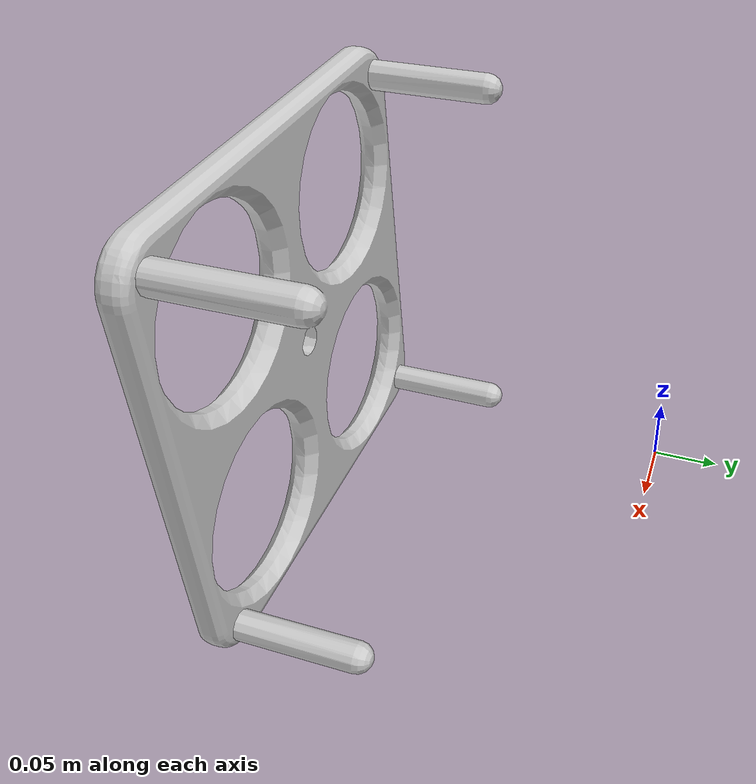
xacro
<?xml version="1.0"?>
<!-- Name your robot here -->
<robot name ="flat_drone" xmlns:xacro="http://wiki.ros.org/xacro">

	<xacro:include filename="$(find flat_drone)/urdf/flat_drone.urdf"/>

	<!--  Gazebo plugin for control here is already added for you -->
	<gazebo>
		<plugin name="gazebo_ros_control" filename="libgazebo_ros_control.so">
			<robotNamespace>/flat_drone</robotNamespace>
			<robotSimType>gazebo_ros_control/DefaultRobotHWSim</robotSimType>
			<legacyModeNS>true</legacyModeNS>
		</plugin>
	</gazebo>

</robot>

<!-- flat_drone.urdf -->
<robot
  name="flat_drone">
  <link name="dummy_link"></link>
    <joint
      name="dummy_joint"
      type="fixed">
      <origin
        xyz="0 0 0"
        rpy="0 0 0" />
      <parent
        link="dummy_link" />
      <child
        link="chassis" />
    </joint>
  <link
    name="chassis">
    <inertial>
      <origin
        xyz="0.158252280467528 0.18037620453903 0.219588795554135"
        rpy="0 0 0" />
      <mass
        value="0.894063156436566" />
      <inertia
        ixx="0.00864147938306697"
        ixy="-2.12588363777296E-11"
        ixz="1.45183918634266E-15"
        iyy="0.00864147950443815"
        iyz="1.29740786190204E-15"
        izz="0.0165526190624553" />
    </inertial>
    <visual>
      <origin
        xyz="0 0 0"
        rpy="0 0 0" />
      <geometry>
        <mesh
          filename="package://flat_drone/meshes/chassis.STL" />
      </geometry>
      <material
        name="">
        <color
          rgba="0.8 0.8 0.8 1" />
      </material>
    </visual>
    <collision>
      <origin
        xyz="0 0 0"
        rpy="0 0 0" />
      <geometry>
        <mesh
          filename="package://flat_drone/meshes/chassis.STL" />
      </geometry>
    </collision>
  </link>
</robot>
